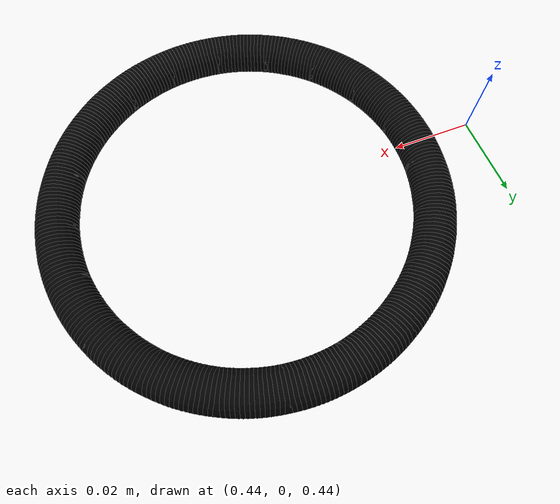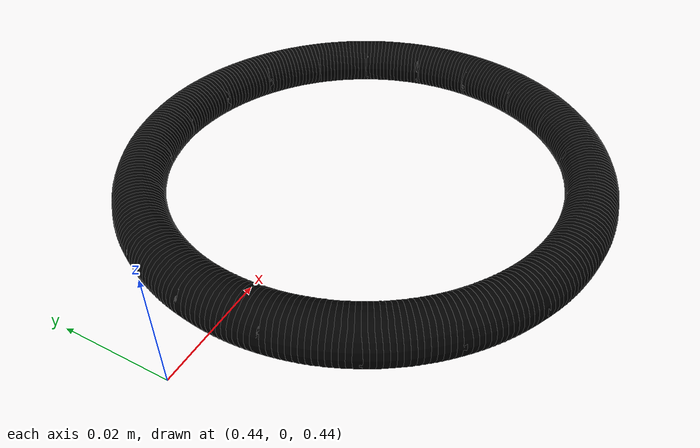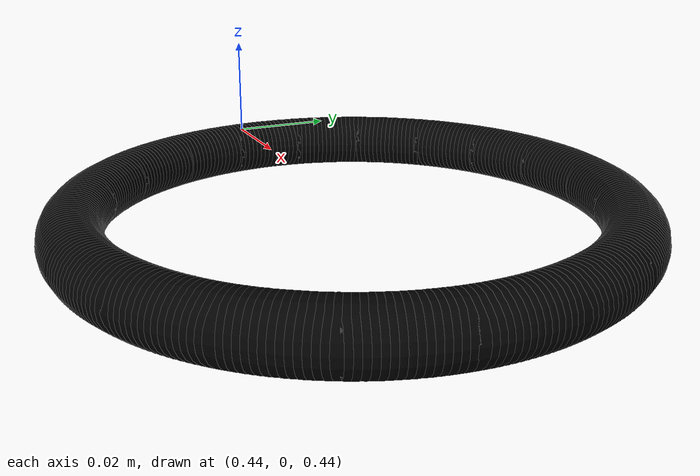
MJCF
<mujoco>
    <worldbody>
        <body name="black_ring" pos="0.5 0 0.44">
            <joint name="black_ring:joint" type="free" damping="0.1" />
            <geom type="sphere" size="0.005" pos="0.045 0.0 0" rgba="0 0 0 1" />
            <geom type="sphere" size="0.005" pos="0.04499013075636805 0.000942408894751063 0" rgba="0 0 0 1" />
            <geom type="sphere" size="0.005" pos="0.04496052735444862 0.001884404417813983 0" rgba="0 0 0 1" />
            <geom type="sphere" size="0.005" pos="0.04491120277927222 0.0028255733788191016 0" rgba="0 0 0 1" />
            <geom type="sphere" size="0.005" pos="0.044842178666227694 0.0037655029499541965 0" rgba="0 0 0 1" />
            <geom type="sphere" size="0.005" pos="0.0447534852915723 0.004703780847044405 0" rgba="0 0 0 1" />
            <geom type="sphere" size="0.005" pos="0.044645161559151506 0.005639995510393692 0" rgba="0 0 0 1" />
            <geom type="sphere" size="0.005" pos="0.044517254983334476 0.006573736285308523 0" rgba="0 0 0 1" />
            <geom type="sphere" size="0.005" pos="0.04436982166817272 0.007504593602224601 0" rgba="0 0 0 1" />
            <geom type="sphere" size="0.005" pos="0.04420292628279099 0.008432159156357607 0" rgba="0 0 0 1" />
            <geom type="sphere" size="0.005" pos="0.044016642033021254 0.009356026086799168 0" rgba="0 0 0 1" />
            <geom type="sphere" size="0.005" pos="0.04381105062929221 0.010275789154979505 0" rgba="0 0 0 1" />
            <geom type="sphere" size="0.005" pos="0.043586242250788394 0.011191044922418465 0" rgba="0 0 0 1" />
            <geom type="sphere" size="0.005" pos="0.04334231550589462 0.012101391927686956 0" rgba="0 0 0 1" />
            <geom type="sphere" size="0.005" pos="0.043079377388943026 0.013006430862501223 0" rgba="0 0 0 1" />
            <geom type="sphere" size="0.005" pos="0.04279754323328191 0.013905764746872632 0" rgba="0 0 0 1" />
            <geom type="sphere" size="0.005" pos="0.04249693666068665 0.014798999103236244 0" rgba="0 0 0 1" />
            <geom type="sphere" size="0.005" pos="0.04217768952713512 0.01568574212948168 0" rgba="0 0 0 1" />
            <geom type="sphere" size="0.005" pos="0.041839941864971315 0.016565604870810505 0" rgba="0 0 0 1" />
            <geom type="sphere" size="0.005" pos="0.04148384182148252 0.017438201390344632 0" rgba="0 0 0 1" />
            <geom type="sphere" size="0.005" pos="0.04110954559391704 0.018303148938411007 0" rgba="0 0 0 1" />
            <geom type="sphere" size="0.005" pos="0.04071721736097088 0.01916006812042827 0" rgba="0 0 0 1" />
            <geom type="sphere" size="0.005" pos="0.04030702921077358 0.020008583063321733 0" rgba="0 0 0 1" />
            <geom type="sphere" size="0.005" pos="0.039879161065404664 0.020848321580393774 0" rgba="0 0 0 1" />
            <geom type="sphere" size="0.005" pos="0.03943380060197386 0.02167891533457719 0" rgba="0 0 0 1" />
            <geom type="sphere" size="0.005" pos="0.03897114317029973 0.0225 0" rgba="0 0 0 1" />
            <geom type="sphere" size="0.005" pos="0.0384913917072228 0.023311215421790855 0" rgba="0 0 0 1" />
            <geom type="sphere" size="0.005" pos="0.03799475664759068 0.02411220577405485 0" rgba="0 0 0 1" />
            <geom type="sphere" size="0.005" pos="0.037481455831954474 0.024902619715950484 0" rgba="0 0 0 1" />
            <geom type="sphere" size="0.005" pos="0.03695171441101668 0.02568211054579942 0" rgba="0 0 0 1" />
            <geom type="sphere" size="0.005" pos="0.03640576474687263 0.02645033635316129 0" rgba="0 0 0 1" />
            <geom type="sphere" size="0.005" pos="0.03584384631108883 0.027206960168806867 0" rgba="0 0 0 1" />
            <geom type="sphere" size="0.005" pos="0.03526620557966279 0.027951650112523964 0" rgba="0 0 0 1" />
            <geom type="sphere" size="0.005" pos="0.03467309592491052 0.028684079538691034 0" rgba="0 0 0 1" />
            <geom type="sphere" size="0.005" pos="0.034064777504329034 0.029403927179554742 0" rgba="0 0 0 1" />
            <geom type="sphere" size="0.005" pos="0.03344151714648275 0.030110877286148613 0" rgba="0 0 0 1" />
            <geom type="sphere" size="0.005" pos="0.03280358823396352 0.030804619766790987 0" rgba="0 0 0 1" />
            <geom type="sphere" size="0.005" pos="0.03215127058347615 0.031484850323101436 0" rgba="0 0 0 1" />
            <geom type="sphere" size="0.005" pos="0.03148485032310145 0.032151270583476145 0" rgba="0 0 0 1" />
            <geom type="sphere" size="0.005" pos="0.03080461976679099 0.03280358823396352 0" rgba="0 0 0 1" />
            <geom type="sphere" size="0.005" pos="0.03011087728614862 0.03344151714648273 0" rgba="0 0 0 1" />
            <geom type="sphere" size="0.005" pos="0.02940392717955475 0.034064777504329034 0" rgba="0 0 0 1" />
            <geom type="sphere" size="0.005" pos="0.028684079538691037 0.03467309592491052 0" rgba="0 0 0 1" />
            <geom type="sphere" size="0.005" pos="0.027951650112523967 0.035266205579662785 0" rgba="0 0 0 1" />
            <geom type="sphere" size="0.005" pos="0.027206960168806877 0.03584384631108883 0" rgba="0 0 0 1" />
            <geom type="sphere" size="0.005" pos="0.02645033635316129 0.03640576474687263 0" rgba="0 0 0 1" />
            <geom type="sphere" size="0.005" pos="0.02568211054579943 0.036951714411016676 0" rgba="0 0 0 1" />
            <geom type="sphere" size="0.005" pos="0.024902619715950484 0.03748145583195448 0" rgba="0 0 0 1" />
            <geom type="sphere" size="0.005" pos="0.024112205774054842 0.03799475664759068 0" rgba="0 0 0 1" />
            <geom type="sphere" size="0.005" pos="0.023311215421790862 0.038491391707222794 0" rgba="0 0 0 1" />
            <geom type="sphere" size="0.005" pos="0.022499999999999996 0.03897114317029974 0" rgba="0 0 0 1" />
            <geom type="sphere" size="0.005" pos="0.02167891533457719 0.03943380060197386 0" rgba="0 0 0 1" />
            <geom type="sphere" size="0.005" pos="0.020848321580393778 0.039879161065404664 0" rgba="0 0 0 1" />
            <geom type="sphere" size="0.005" pos="0.020008583063321737 0.04030702921077358 0" rgba="0 0 0 1" />
            <geom type="sphere" size="0.005" pos="0.01916006812042827 0.04071721736097088 0" rgba="0 0 0 1" />
            <geom type="sphere" size="0.005" pos="0.01830314893841101 0.04110954559391704 0" rgba="0 0 0 1" />
            <geom type="sphere" size="0.005" pos="0.017438201390344632 0.04148384182148252 0" rgba="0 0 0 1" />
            <geom type="sphere" size="0.005" pos="0.01656560487081051 0.04183994186497131 0" rgba="0 0 0 1" />
            <geom type="sphere" size="0.005" pos="0.01568574212948169 0.04217768952713511 0" rgba="0 0 0 1" />
            <geom type="sphere" size="0.005" pos="0.014798999103236248 0.04249693666068664 0" rgba="0 0 0 1" />
            <geom type="sphere" size="0.005" pos="0.013905764746872634 0.04279754323328191 0" rgba="0 0 0 1" />
            <geom type="sphere" size="0.005" pos="0.013006430862501223 0.043079377388943026 0" rgba="0 0 0 1" />
            <geom type="sphere" size="0.005" pos="0.012101391927686956 0.04334231550589462 0" rgba="0 0 0 1" />
            <geom type="sphere" size="0.005" pos="0.011191044922418463 0.043586242250788394 0" rgba="0 0 0 1" />
            <geom type="sphere" size="0.005" pos="0.010275789154979514 0.043811050629292206 0" rgba="0 0 0 1" />
            <geom type="sphere" size="0.005" pos="0.009356026086799175 0.04401664203302125 0" rgba="0 0 0 1" />
            <geom type="sphere" size="0.005" pos="0.008432159156357612 0.04420292628279099 0" rgba="0 0 0 1" />
            <geom type="sphere" size="0.005" pos="0.007504593602224605 0.044369821668172715 0" rgba="0 0 0 1" />
            <geom type="sphere" size="0.005" pos="0.006573736285308524 0.044517254983334476 0" rgba="0 0 0 1" />
            <geom type="sphere" size="0.005" pos="0.005639995510393692 0.044645161559151506 0" rgba="0 0 0 1" />
            <geom type="sphere" size="0.005" pos="0.004703780847044416 0.0447534852915723 0" rgba="0 0 0 1" />
            <geom type="sphere" size="0.005" pos="0.0037655029499541947 0.044842178666227694 0" rgba="0 0 0 1" />
            <geom type="sphere" size="0.005" pos="0.0028255733788191085 0.04491120277927222 0" rgba="0 0 0 1" />
            <geom type="sphere" size="0.005" pos="0.0018844044178139886 0.04496052735444862 0" rgba="0 0 0 1" />
            <geom type="sphere" size="0.005" pos="0.0009424088947510672 0.04499013075636805 0" rgba="0 0 0 1" />
            <geom type="sphere" size="0.005" pos="2.7554552980815448e-18 0.045 0" rgba="0 0 0 1" />
            <geom type="sphere" size="0.005" pos="-0.0009424088947510516 0.04499013075636805 0" rgba="0 0 0 1" />
            <geom type="sphere" size="0.005" pos="-0.001884404417813983 0.04496052735444862 0" rgba="0 0 0 1" />
            <geom type="sphere" size="0.005" pos="-0.002825573378819093 0.04491120277927222 0" rgba="0 0 0 1" />
            <geom type="sphere" size="0.005" pos="-0.003765502949954199 0.044842178666227694 0" rgba="0 0 0 1" />
            <geom type="sphere" size="0.005" pos="-0.0047037808470444 0.044753485291572304 0" rgba="0 0 0 1" />
            <geom type="sphere" size="0.005" pos="-0.005639995510393687 0.044645161559151506 0" rgba="0 0 0 1" />
            <geom type="sphere" size="0.005" pos="-0.006573736285308509 0.044517254983334476 0" rgba="0 0 0 1" />
            <geom type="sphere" size="0.005" pos="-0.00750459360222461 0.044369821668172715 0" rgba="0 0 0 1" />
            <geom type="sphere" size="0.005" pos="-0.008432159156357607 0.04420292628279099 0" rgba="0 0 0 1" />
            <geom type="sphere" size="0.005" pos="-0.00935602608679917 0.044016642033021254 0" rgba="0 0 0 1" />
            <geom type="sphere" size="0.005" pos="-0.0102757891549795 0.04381105062929221 0" rgba="0 0 0 1" />
            <geom type="sphere" size="0.005" pos="-0.011191044922418458 0.0435862422507884 0" rgba="0 0 0 1" />
            <geom type="sphere" size="0.005" pos="-0.01210139192768694 0.04334231550589462 0" rgba="0 0 0 1" />
            <geom type="sphere" size="0.005" pos="-0.013006430862501228 0.043079377388943026 0" rgba="0 0 0 1" />
            <geom type="sphere" size="0.005" pos="-0.013905764746872629 0.042797543233281915 0" rgba="0 0 0 1" />
            <geom type="sphere" size="0.005" pos="-0.014798999103236243 0.04249693666068665 0" rgba="0 0 0 1" />
            <geom type="sphere" size="0.005" pos="-0.015685742129481674 0.04217768952713512 0" rgba="0 0 0 1" />
            <geom type="sphere" size="0.005" pos="-0.016565604870810498 0.041839941864971315 0" rgba="0 0 0 1" />
            <geom type="sphere" size="0.005" pos="-0.017438201390344635 0.04148384182148252 0" rgba="0 0 0 1" />
            <geom type="sphere" size="0.005" pos="-0.01830314893841101 0.04110954559391704 0" rgba="0 0 0 1" />
            <geom type="sphere" size="0.005" pos="-0.01916006812042827 0.04071721736097087 0" rgba="0 0 0 1" />
            <geom type="sphere" size="0.005" pos="-0.020008583063321723 0.04030702921077359 0" rgba="0 0 0 1" />
            <geom type="sphere" size="0.005" pos="-0.020848321580393767 0.039879161065404664 0" rgba="0 0 0 1" />
            <geom type="sphere" size="0.005" pos="-0.021678915334577192 0.03943380060197386 0" rgba="0 0 0 1" />
            <geom type="sphere" size="0.005" pos="-0.02250000000000001 0.03897114317029973 0" rgba="0 0 0 1" />
            <geom type="sphere" size="0.005" pos="-0.023311215421790852 0.0384913917072228 0" rgba="0 0 0 1" />
            <geom type="sphere" size="0.005" pos="-0.02411220577405484 0.03799475664759068 0" rgba="0 0 0 1" />
            <geom type="sphere" size="0.005" pos="-0.02490261971595048 0.03748145583195448 0" rgba="0 0 0 1" />
            <geom type="sphere" size="0.005" pos="-0.02568211054579942 0.03695171441101668 0" rgba="0 0 0 1" />
            <geom type="sphere" size="0.005" pos="-0.026450336353161286 0.03640576474687263 0" rgba="0 0 0 1" />
            <geom type="sphere" size="0.005" pos="-0.027206960168806867 0.035843846311088834 0" rgba="0 0 0 1" />
            <geom type="sphere" size="0.005" pos="-0.027951650112523964 0.03526620557966279 0" rgba="0 0 0 1" />
            <geom type="sphere" size="0.005" pos="-0.028684079538691037 0.03467309592491052 0" rgba="0 0 0 1" />
            <geom type="sphere" size="0.005" pos="-0.029403927179554732 0.03406477750432905 0" rgba="0 0 0 1" />
            <geom type="sphere" size="0.005" pos="-0.03011087728614862 0.03344151714648274 0" rgba="0 0 0 1" />
            <geom type="sphere" size="0.005" pos="-0.03080461976679099 0.03280358823396352 0" rgba="0 0 0 1" />
            <geom type="sphere" size="0.005" pos="-0.03148485032310144 0.032151270583476145 0" rgba="0 0 0 1" />
            <geom type="sphere" size="0.005" pos="-0.03215127058347614 0.03148485032310145 0" rgba="0 0 0 1" />
            <geom type="sphere" size="0.005" pos="-0.03280358823396351 0.030804619766790997 0" rgba="0 0 0 1" />
            <geom type="sphere" size="0.005" pos="-0.03344151714648275 0.03011087728614861 0" rgba="0 0 0 1" />
            <geom type="sphere" size="0.005" pos="-0.034064777504329034 0.02940392717955475 0" rgba="0 0 0 1" />
            <geom type="sphere" size="0.005" pos="-0.03467309592491051 0.02868407953869104 0" rgba="0 0 0 1" />
            <geom type="sphere" size="0.005" pos="-0.035266205579662785 0.027951650112523974 0" rgba="0 0 0 1" />
            <geom type="sphere" size="0.005" pos="-0.03584384631108883 0.02720696016880687 0" rgba="0 0 0 1" />
            <geom type="sphere" size="0.005" pos="-0.036405764746872626 0.026450336353161297 0" rgba="0 0 0 1" />
            <geom type="sphere" size="0.005" pos="-0.03695171441101668 0.025682110545799428 0" rgba="0 0 0 1" />
            <geom type="sphere" size="0.005" pos="-0.037481455831954474 0.024902619715950484 0" rgba="0 0 0 1" />
            <geom type="sphere" size="0.005" pos="-0.03799475664759068 0.02411220577405485 0" rgba="0 0 0 1" />
            <geom type="sphere" size="0.005" pos="-0.038491391707222794 0.023311215421790855 0" rgba="0 0 0 1" />
            <geom type="sphere" size="0.005" pos="-0.03897114317029973 0.022500000000000013 0" rgba="0 0 0 1" />
            <geom type="sphere" size="0.005" pos="-0.03943380060197386 0.021678915334577185 0" rgba="0 0 0 1" />
            <geom type="sphere" size="0.005" pos="-0.039879161065404664 0.02084832158039377 0" rgba="0 0 0 1" />
            <geom type="sphere" size="0.005" pos="-0.040307029210773566 0.02000858306332175 0" rgba="0 0 0 1" />
            <geom type="sphere" size="0.005" pos="-0.04071721736097087 0.019160068120428277 0" rgba="0 0 0 1" />
            <geom type="sphere" size="0.005" pos="-0.04110954559391703 0.018303148938411017 0" rgba="0 0 0 1" />
            <geom type="sphere" size="0.005" pos="-0.04148384182148253 0.017438201390344625 0" rgba="0 0 0 1" />
            <geom type="sphere" size="0.005" pos="-0.04183994186497131 0.016565604870810515 0" rgba="0 0 0 1" />
            <geom type="sphere" size="0.005" pos="-0.04217768952713511 0.015685742129481692 0" rgba="0 0 0 1" />
            <geom type="sphere" size="0.005" pos="-0.04249693666068664 0.014798999103236253 0" rgba="0 0 0 1" />
            <geom type="sphere" size="0.005" pos="-0.04279754323328191 0.013905764746872638 0" rgba="0 0 0 1" />
            <geom type="sphere" size="0.005" pos="-0.043079377388943026 0.013006430862501224 0" rgba="0 0 0 1" />
            <geom type="sphere" size="0.005" pos="-0.04334231550589461 0.012101391927686958 0" rgba="0 0 0 1" />
            <geom type="sphere" size="0.005" pos="-0.043586242250788394 0.011191044922418467 0" rgba="0 0 0 1" />
            <geom type="sphere" size="0.005" pos="-0.04381105062929221 0.010275789154979509 0" rgba="0 0 0 1" />
            <geom type="sphere" size="0.005" pos="-0.04401664203302125 0.009356026086799188 0" rgba="0 0 0 1" />
            <geom type="sphere" size="0.005" pos="-0.04420292628279099 0.008432159156357626 0" rgba="0 0 0 1" />
            <geom type="sphere" size="0.005" pos="-0.04436982166817272 0.007504593602224598 0" rgba="0 0 0 1" />
            <geom type="sphere" size="0.005" pos="-0.044517254983334476 0.0065737362853085166 0" rgba="0 0 0 1" />
            <geom type="sphere" size="0.005" pos="-0.0446451615591515 0.005639995510393704 0" rgba="0 0 0 1" />
            <geom type="sphere" size="0.005" pos="-0.0447534852915723 0.0047037808470444175 0" rgba="0 0 0 1" />
            <geom type="sphere" size="0.005" pos="-0.044842178666227694 0.0037655029499542077 0" rgba="0 0 0 1" />
            <geom type="sphere" size="0.005" pos="-0.04491120277927222 0.002825573378819091 0" rgba="0 0 0 1" />
            <geom type="sphere" size="0.005" pos="-0.04496052735444862 0.0018844044178139914 0" rgba="0 0 0 1" />
            <geom type="sphere" size="0.005" pos="-0.04499013075636805 0.0009424088947510699 0" rgba="0 0 0 1" />
            <geom type="sphere" size="0.005" pos="-0.045 5.5109105961630896e-18 0" rgba="0 0 0 1" />
            <geom type="sphere" size="0.005" pos="-0.04499013075636805 -0.000942408894751059 0" rgba="0 0 0 1" />
            <geom type="sphere" size="0.005" pos="-0.04496052735444862 -0.0018844044178139604 0" rgba="0 0 0 1" />
            <geom type="sphere" size="0.005" pos="-0.04491120277927222 -0.0028255733788191003 0" rgba="0 0 0 1" />
            <geom type="sphere" size="0.005" pos="-0.044842178666227694 -0.0037655029499541965 0" rgba="0 0 0 1" />
            <geom type="sphere" size="0.005" pos="-0.0447534852915723 -0.004703780847044407 0" rgba="0 0 0 1" />
            <geom type="sphere" size="0.005" pos="-0.044645161559151506 -0.005639995510393673 0" rgba="0 0 0 1" />
            <geom type="sphere" size="0.005" pos="-0.044517254983334476 -0.006573736285308506 0" rgba="0 0 0 1" />
            <geom type="sphere" size="0.005" pos="-0.044369821668172715 -0.0075045936022246065 0" rgba="0 0 0 1" />
            <geom type="sphere" size="0.005" pos="-0.04420292628279099 -0.008432159156357614 0" rgba="0 0 0 1" />
            <geom type="sphere" size="0.005" pos="-0.044016642033021254 -0.009356026086799158 0" rgba="0 0 0 1" />
            <geom type="sphere" size="0.005" pos="-0.04381105062929221 -0.010275789154979497 0" rgba="0 0 0 1" />
            <geom type="sphere" size="0.005" pos="-0.0435862422507884 -0.011191044922418455 0" rgba="0 0 0 1" />
            <geom type="sphere" size="0.005" pos="-0.04334231550589462 -0.01210139192768695 0" rgba="0 0 0 1" />
            <geom type="sphere" size="0.005" pos="-0.04307937738894303 -0.013006430862501195 0" rgba="0 0 0 1" />
            <geom type="sphere" size="0.005" pos="-0.042797543233281915 -0.01390576474687261 0" rgba="0 0 0 1" />
            <geom type="sphere" size="0.005" pos="-0.042496936660686636 -0.01479899910323626 0" rgba="0 0 0 1" />
            <geom type="sphere" size="0.005" pos="-0.04217768952713512 -0.01568574212948168 0" rgba="0 0 0 1" />
            <geom type="sphere" size="0.005" pos="-0.041839941864971315 -0.016565604870810505 0" rgba="0 0 0 1" />
            <geom type="sphere" size="0.005" pos="-0.04148384182148252 -0.017438201390344632 0" rgba="0 0 0 1" />
            <geom type="sphere" size="0.005" pos="-0.04110954559391704 -0.01830314893841101 0" rgba="0 0 0 1" />
            <geom type="sphere" size="0.005" pos="-0.04071721736097087 -0.01916006812042827 0" rgba="0 0 0 1" />
            <geom type="sphere" size="0.005" pos="-0.04030702921077359 -0.02000858306332172 0" rgba="0 0 0 1" />
            <geom type="sphere" size="0.005" pos="-0.039879161065404664 -0.02084832158039376 0" rgba="0 0 0 1" />
            <geom type="sphere" size="0.005" pos="-0.039433800601973865 -0.021678915334577175 0" rgba="0 0 0 1" />
            <geom type="sphere" size="0.005" pos="-0.038971143170299746 -0.022499999999999985 0" rgba="0 0 0 1" />
            <geom type="sphere" size="0.005" pos="-0.038491391707222815 -0.02331121542179083 0" rgba="0 0 0 1" />
            <geom type="sphere" size="0.005" pos="-0.03799475664759067 -0.024112205774054853 0" rgba="0 0 0 1" />
            <geom type="sphere" size="0.005" pos="-0.03748145583195447 -0.024902619715950494 0" rgba="0 0 0 1" />
            <geom type="sphere" size="0.005" pos="-0.03695171441101668 -0.025682110545799417 0" rgba="0 0 0 1" />
            <geom type="sphere" size="0.005" pos="-0.03640576474687263 -0.026450336353161286 0" rgba="0 0 0 1" />
            <geom type="sphere" size="0.005" pos="-0.035843846311088834 -0.027206960168806863 0" rgba="0 0 0 1" />
            <geom type="sphere" size="0.005" pos="-0.03526620557966279 -0.027951650112523964 0" rgba="0 0 0 1" />
            <geom type="sphere" size="0.005" pos="-0.03467309592491052 -0.028684079538691034 0" rgba="0 0 0 1" />
            <geom type="sphere" size="0.005" pos="-0.03406477750432905 -0.029403927179554725 0" rgba="0 0 0 1" />
            <geom type="sphere" size="0.005" pos="-0.03344151714648275 -0.030110877286148606 0" rgba="0 0 0 1" />
            <geom type="sphere" size="0.005" pos="-0.03280358823396353 -0.030804619766790976 0" rgba="0 0 0 1" />
            <geom type="sphere" size="0.005" pos="-0.03215127058347615 -0.03148485032310144 0" rgba="0 0 0 1" />
            <geom type="sphere" size="0.005" pos="-0.031484850323101436 -0.03215127058347615 0" rgba="0 0 0 1" />
            <geom type="sphere" size="0.005" pos="-0.030804619766790987 -0.03280358823396352 0" rgba="0 0 0 1" />
            <geom type="sphere" size="0.005" pos="-0.030110877286148613 -0.03344151714648275 0" rgba="0 0 0 1" />
            <geom type="sphere" size="0.005" pos="-0.02940392717955475 -0.03406477750432903 0" rgba="0 0 0 1" />
            <geom type="sphere" size="0.005" pos="-0.028684079538691027 -0.03467309592491052 0" rgba="0 0 0 1" />
            <geom type="sphere" size="0.005" pos="-0.027951650112523974 -0.03526620557966278 0" rgba="0 0 0 1" />
            <geom type="sphere" size="0.005" pos="-0.02720696016880689 -0.03584384631108881 0" rgba="0 0 0 1" />
            <geom type="sphere" size="0.005" pos="-0.026450336353161297 -0.036405764746872626 0" rgba="0 0 0 1" />
            <geom type="sphere" size="0.005" pos="-0.025682110545799445 -0.03695171441101667 0" rgba="0 0 0 1" />
            <geom type="sphere" size="0.005" pos="-0.024902619715950484 -0.037481455831954474 0" rgba="0 0 0 1" />
            <geom type="sphere" size="0.005" pos="-0.024112205774054835 -0.03799475664759069 0" rgba="0 0 0 1" />
            <geom type="sphere" size="0.005" pos="-0.023311215421790862 -0.038491391707222794 0" rgba="0 0 0 1" />
            <geom type="sphere" size="0.005" pos="-0.022499999999999982 -0.038971143170299746 0" rgba="0 0 0 1" />
            <geom type="sphere" size="0.005" pos="-0.021678915334577185 -0.03943380060197386 0" rgba="0 0 0 1" />
            <geom type="sphere" size="0.005" pos="-0.02084832158039379 -0.03987916106540465 0" rgba="0 0 0 1" />
            <geom type="sphere" size="0.005" pos="-0.020008583063321733 -0.04030702921077358 0" rgba="0 0 0 1" />
            <geom type="sphere" size="0.005" pos="-0.01916006812042828 -0.04071721736097087 0" rgba="0 0 0 1" />
            <geom type="sphere" size="0.005" pos="-0.01830314893841104 -0.041109545593917024 0" rgba="0 0 0 1" />
            <geom type="sphere" size="0.005" pos="-0.017438201390344642 -0.041483841821482514 0" rgba="0 0 0 1" />
            <geom type="sphere" size="0.005" pos="-0.016565604870810536 -0.0418399418649713 0" rgba="0 0 0 1" />
            <geom type="sphere" size="0.005" pos="-0.015685742129481695 -0.04217768952713511 0" rgba="0 0 0 1" />
            <geom type="sphere" size="0.005" pos="-0.014798999103236236 -0.04249693666068665 0" rgba="0 0 0 1" />
            <geom type="sphere" size="0.005" pos="-0.01390576474687264 -0.04279754323328191 0" rgba="0 0 0 1" />
            <geom type="sphere" size="0.005" pos="-0.013006430862501207 -0.04307937738894303 0" rgba="0 0 0 1" />
            <geom type="sphere" size="0.005" pos="-0.012101391927686962 -0.04334231550589461 0" rgba="0 0 0 1" />
            <geom type="sphere" size="0.005" pos="-0.011191044922418488 -0.043586242250788394 0" rgba="0 0 0 1" />
            <geom type="sphere" size="0.005" pos="-0.01027578915497951 -0.04381105062929221 0" rgba="0 0 0 1" />
            <geom type="sphere" size="0.005" pos="-0.00935602608679919 -0.04401664203302125 0" rgba="0 0 0 1" />
            <geom type="sphere" size="0.005" pos="-0.008432159156357607 -0.04420292628279099 0" rgba="0 0 0 1" />
            <geom type="sphere" size="0.005" pos="-0.00750459360222462 -0.044369821668172715 0" rgba="0 0 0 1" />
            <geom type="sphere" size="0.005" pos="-0.006573736285308559 -0.04451725498333447 0" rgba="0 0 0 1" />
            <geom type="sphere" size="0.005" pos="-0.0056399955103936675 -0.044645161559151506 0" rgba="0 0 0 1" />
            <geom type="sphere" size="0.005" pos="-0.004703780847044401 -0.044753485291572304 0" rgba="0 0 0 1" />
            <geom type="sphere" size="0.005" pos="-0.0037655029499542103 -0.04484217866622769 0" rgba="0 0 0 1" />
            <geom type="sphere" size="0.005" pos="-0.002825573378819094 -0.04491120277927222 0" rgba="0 0 0 1" />
            <geom type="sphere" size="0.005" pos="-0.0018844044178139942 -0.04496052735444862 0" rgba="0 0 0 1" />
            <geom type="sphere" size="0.005" pos="-0.0009424088947510527 -0.04499013075636805 0" rgba="0 0 0 1" />
            <geom type="sphere" size="0.005" pos="-8.266365894244633e-18 -0.045 0" rgba="0 0 0 1" />
            <geom type="sphere" size="0.005" pos="0.0009424088947510362 -0.04499013075636805 0" rgba="0 0 0 1" />
            <geom type="sphere" size="0.005" pos="0.0018844044178139778 -0.04496052735444862 0" rgba="0 0 0 1" />
            <geom type="sphere" size="0.005" pos="0.0028255733788190773 -0.04491120277927222 0" rgba="0 0 0 1" />
            <geom type="sphere" size="0.005" pos="0.003765502949954154 -0.044842178666227694 0" rgba="0 0 0 1" />
            <geom type="sphere" size="0.005" pos="0.0047037808470444245 -0.0447534852915723 0" rgba="0 0 0 1" />
            <geom type="sphere" size="0.005" pos="0.00563999551039369 -0.044645161559151506 0" rgba="0 0 0 1" />
            <geom type="sphere" size="0.005" pos="0.0065737362853085035 -0.044517254983334476 0" rgba="0 0 0 1" />
            <geom type="sphere" size="0.005" pos="0.007504593602224604 -0.044369821668172715 0" rgba="0 0 0 1" />
            <geom type="sphere" size="0.005" pos="0.008432159156357592 -0.04420292628279099 0" rgba="0 0 0 1" />
            <geom type="sphere" size="0.005" pos="0.009356026086799174 -0.04401664203302125 0" rgba="0 0 0 1" />
            <geom type="sphere" size="0.005" pos="0.010275789154979495 -0.04381105062929221 0" rgba="0 0 0 1" />
            <geom type="sphere" size="0.005" pos="0.011191044922418432 -0.04358624225078841 0" rgba="0 0 0 1" />
            <geom type="sphere" size="0.005" pos="0.012101391927686946 -0.04334231550589462 0" rgba="0 0 0 1" />
            <geom type="sphere" size="0.005" pos="0.013006430862501193 -0.04307937738894303 0" rgba="0 0 0 1" />
            <geom type="sphere" size="0.005" pos="0.013905764746872626 -0.042797543233281915 0" rgba="0 0 0 1" />
            <geom type="sphere" size="0.005" pos="0.014798999103236258 -0.04249693666068664 0" rgba="0 0 0 1" />
            <geom type="sphere" size="0.005" pos="0.015685742129481678 -0.04217768952713512 0" rgba="0 0 0 1" />
            <geom type="sphere" size="0.005" pos="0.016565604870810522 -0.0418399418649713 0" rgba="0 0 0 1" />
            <geom type="sphere" size="0.005" pos="0.01743820139034463 -0.04148384182148252 0" rgba="0 0 0 1" />
            <geom type="sphere" size="0.005" pos="0.01830314893841099 -0.041109545593917045 0" rgba="0 0 0 1" />
            <geom type="sphere" size="0.005" pos="0.019160068120428267 -0.04071721736097088 0" rgba="0 0 0 1" />
            <geom type="sphere" size="0.005" pos="0.020008583063321716 -0.04030702921077359 0" rgba="0 0 0 1" />
            <geom type="sphere" size="0.005" pos="0.020848321580393778 -0.039879161065404664 0" rgba="0 0 0 1" />
            <geom type="sphere" size="0.005" pos="0.02167891533457717 -0.03943380060197387 0" rgba="0 0 0 1" />
            <geom type="sphere" size="0.005" pos="0.022499999999999968 -0.03897114317029975 0" rgba="0 0 0 1" />
            <geom type="sphere" size="0.005" pos="0.023311215421790883 -0.03849139170722279 0" rgba="0 0 0 1" />
            <geom type="sphere" size="0.005" pos="0.024112205774054853 -0.03799475664759067 0" rgba="0 0 0 1" />
            <geom type="sphere" size="0.005" pos="0.024902619715950473 -0.03748145583195448 0" rgba="0 0 0 1" />
            <geom type="sphere" size="0.005" pos="0.02568211054579943 -0.036951714411016676 0" rgba="0 0 0 1" />
            <geom type="sphere" size="0.005" pos="0.02645033635316128 -0.03640576474687264 0" rgba="0 0 0 1" />
            <geom type="sphere" size="0.005" pos="0.027206960168806846 -0.03584384631108885 0" rgba="0 0 0 1" />
            <geom type="sphere" size="0.005" pos="0.027951650112523964 -0.03526620557966279 0" rgba="0 0 0 1" />
            <geom type="sphere" size="0.005" pos="0.028684079538691017 -0.03467309592491053 0" rgba="0 0 0 1" />
            <geom type="sphere" size="0.005" pos="0.029403927179554742 -0.03406477750432904 0" rgba="0 0 0 1" />
            <geom type="sphere" size="0.005" pos="0.0301108772861486 -0.033441517146482753 0" rgba="0 0 0 1" />
            <geom type="sphere" size="0.005" pos="0.030804619766790955 -0.032803588233963545 0" rgba="0 0 0 1" />
            <geom type="sphere" size="0.005" pos="0.03148485032310146 -0.03215127058347614 0" rgba="0 0 0 1" />
            <geom type="sphere" size="0.005" pos="0.03215127058347615 -0.03148485032310144 0" rgba="0 0 0 1" />
            <geom type="sphere" size="0.005" pos="0.0328035882339635 -0.030804619766791 0" rgba="0 0 0 1" />
            <geom type="sphere" size="0.005" pos="0.03344151714648274 -0.030110877286148613 0" rgba="0 0 0 1" />
            <geom type="sphere" size="0.005" pos="0.03406477750432903 -0.029403927179554756 0" rgba="0 0 0 1" />
            <geom type="sphere" size="0.005" pos="0.03467309592491052 -0.028684079538691034 0" rgba="0 0 0 1" />
            <geom type="sphere" size="0.005" pos="0.03526620557966278 -0.027951650112523978 0" rgba="0 0 0 1" />
            <geom type="sphere" size="0.005" pos="0.03584384631108881 -0.02720696016880689 0" rgba="0 0 0 1" />
            <geom type="sphere" size="0.005" pos="0.036405764746872626 -0.0264503363531613 0" rgba="0 0 0 1" />
            <geom type="sphere" size="0.005" pos="0.03695171441101667 -0.025682110545799445 0" rgba="0 0 0 1" />
            <geom type="sphere" size="0.005" pos="0.037481455831954474 -0.024902619715950487 0" rgba="0 0 0 1" />
            <geom type="sphere" size="0.005" pos="0.03799475664759068 -0.024112205774054835 0" rgba="0 0 0 1" />
            <geom type="sphere" size="0.005" pos="0.038491391707222794 -0.023311215421790862 0" rgba="0 0 0 1" />
            <geom type="sphere" size="0.005" pos="0.038971143170299746 -0.022499999999999985 0" rgba="0 0 0 1" />
            <geom type="sphere" size="0.005" pos="0.03943380060197386 -0.02167891533457719 0" rgba="0 0 0 1" />
            <geom type="sphere" size="0.005" pos="0.03987916106540465 -0.020848321580393795 0" rgba="0 0 0 1" />
            <geom type="sphere" size="0.005" pos="0.04030702921077358 -0.020008583063321733 0" rgba="0 0 0 1" />
            <geom type="sphere" size="0.005" pos="0.04071721736097087 -0.019160068120428284 0" rgba="0 0 0 1" />
            <geom type="sphere" size="0.005" pos="0.041109545593917024 -0.01830314893841104 0" rgba="0 0 0 1" />
            <geom type="sphere" size="0.005" pos="0.041483841821482514 -0.017438201390344646 0" rgba="0 0 0 1" />
            <geom type="sphere" size="0.005" pos="0.0418399418649713 -0.01656560487081054 0" rgba="0 0 0 1" />
            <geom type="sphere" size="0.005" pos="0.04217768952713511 -0.0156857421294817 0" rgba="0 0 0 1" />
            <geom type="sphere" size="0.005" pos="0.04249693666068665 -0.014798999103236237 0" rgba="0 0 0 1" />
            <geom type="sphere" size="0.005" pos="0.04279754323328191 -0.013905764746872645 0" rgba="0 0 0 1" />
            <geom type="sphere" size="0.005" pos="0.04307937738894303 -0.01300643086250121 0" rgba="0 0 0 1" />
            <geom type="sphere" size="0.005" pos="0.04334231550589461 -0.012101391927686963 0" rgba="0 0 0 1" />
            <geom type="sphere" size="0.005" pos="0.043586242250788394 -0.01119104492241849 0" rgba="0 0 0 1" />
            <geom type="sphere" size="0.005" pos="0.04381105062929221 -0.010275789154979514 0" rgba="0 0 0 1" />
            <geom type="sphere" size="0.005" pos="0.04401664203302125 -0.009356026086799194 0" rgba="0 0 0 1" />
            <geom type="sphere" size="0.005" pos="0.04420292628279099 -0.00843215915635761 0" rgba="0 0 0 1" />
            <geom type="sphere" size="0.005" pos="0.044369821668172715 -0.007504593602224622 0" rgba="0 0 0 1" />
            <geom type="sphere" size="0.005" pos="0.04451725498333447 -0.0065737362853085625 0" rgba="0 0 0 1" />
            <geom type="sphere" size="0.005" pos="0.044645161559151506 -0.00563999551039367 0" rgba="0 0 0 1" />
            <geom type="sphere" size="0.005" pos="0.0447534852915723 -0.004703780847044404 0" rgba="0 0 0 1" />
            <geom type="sphere" size="0.005" pos="0.04484217866622769 -0.003765502949954213 0" rgba="0 0 0 1" />
            <geom type="sphere" size="0.005" pos="0.04491120277927222 -0.002825573378819097 0" rgba="0 0 0 1" />
            <geom type="sphere" size="0.005" pos="0.04496052735444862 -0.0018844044178139966 0" rgba="0 0 0 1" />
            <geom type="sphere" size="0.005" pos="0.04499013075636805 -0.0009424088947510555 0" rgba="0 0 0 1" />
        </body>
    </worldbody>
</mujoco>
